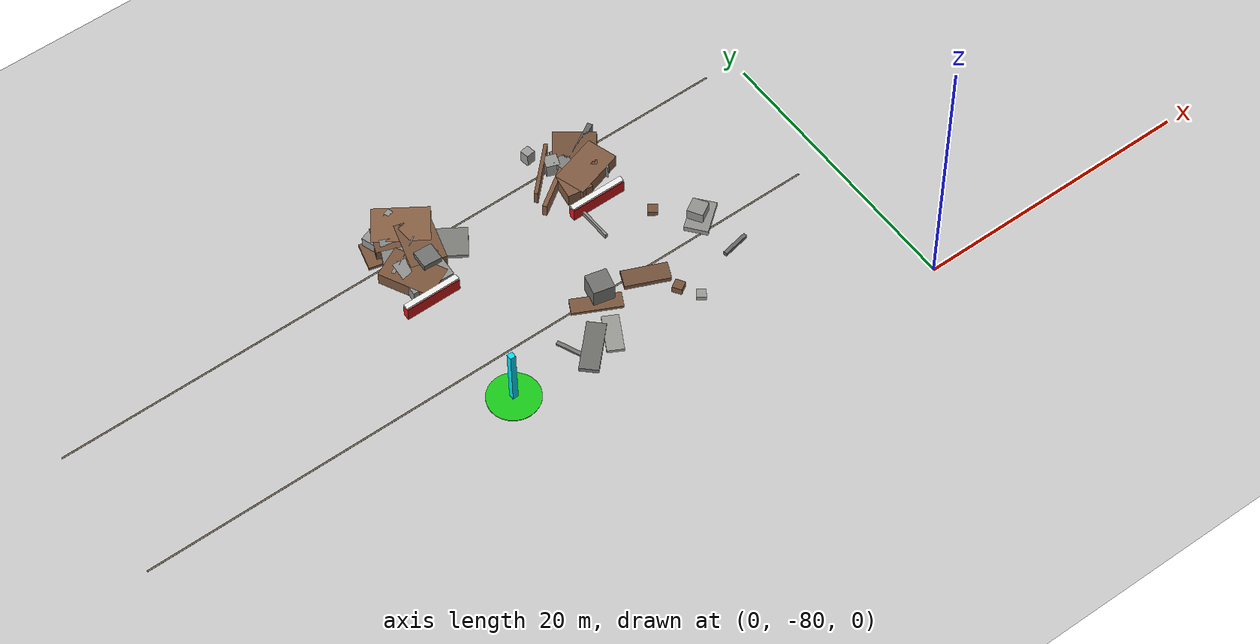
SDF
<sdf version="1.6">
 <world name="navitas_arena">
  <model name="ground_plane">
   <static>true</static>
   <link name="link">
    <collision name="collision">
     <geometry><plane><normal>0 0 1</normal><size>400 400</size></plane></geometry>
     <surface><friction><ode><mu>0.8</mu><mu2>0.8</mu2></ode></friction></surface>
    </collision>
    <visual name="visual">
     <cast_shadows>false</cast_shadows>
     <geometry><plane><normal>0 0 1</normal><size>400 400</size></plane></geometry>
     <material>
      <script><uri>file://media/materials/scripts/gazebo.material</uri><name>Gazebo/Grey</name></script>
     </material>
    </visual>
   </link>
  </model>
  <model name="gh_zor_-2">
   <static>true</static>
   <pose>-27.200 -68.800 0.010 0 0 0.000</pose>
   <link name="link">
    <collision name="col"><geometry><box><size>50.000 0.120 0.020</size></box></geometry></collision>
    <visual name="vis">
     <geometry><box><size>50.000 0.120 0.020</size></box></geometry>
     <material><ambient>0.42 0.38 0.32 1</ambient><diffuse>0.42 0.38 0.32 1</diffuse></material>
    </visual>
   </link>
  </model>
  <model name="gh_zor_-1">
   <static>true</static>
   <pose>-27.200 -58.800 0.010 0 0 0.000</pose>
   <link name="link">
    <collision name="col"><geometry><box><size>50.000 0.120 0.020</size></box></geometry></collision>
    <visual name="vis">
     <geometry><box><size>50.000 0.120 0.020</size></box></geometry>
     <material><ambient>0.42 0.38 0.32 1</ambient><diffuse>0.42 0.38 0.32 1</diffuse></material>
    </visual>
   </link>
  </model>
  <model name="bar_zor_1">
   <static>true</static>
   <pose>-27.200 -62.800 0.500 0 0 0.000</pose>
   <link name="link">
    <collision name="col"><geometry><box><size>4.000 0.500 1.000</size></box></geometry></collision>
    <visual name="vis">
     <geometry><box><size>4.000 0.500 1.000</size></box></geometry>
     <material><ambient>0.85 0.10 0.10 1</ambient><diffuse>0.85 0.10 0.10 1</diffuse></material>
    </visual>
   </link>
  </model>
  <model name="bar_zor_1b">
   <static>true</static>
   <pose>-27.200 -62.800 1.000 0 0 0.000</pose>
   <link name="link">
    <collision name="col"><geometry><box><size>4.000 0.400 0.300</size></box></geometry></collision>
    <visual name="vis">
     <geometry><box><size>4.000 0.400 0.300</size></box></geometry>
     <material><ambient>0.95 0.95 0.95 1</ambient><diffuse>0.95 0.95 0.95 1</diffuse></material>
    </visual>
   </link>
  </model>
  <model name="blk_zor_1_0_2">
   <static>true</static>
   <pose>-27.224 -60.742 0.500 0 0 2.043</pose>
   <link name="link">
    <collision name="col"><geometry><box><size>3.851 2.311 1.000</size></box></geometry></collision>
    <visual name="vis">
     <geometry><box><size>3.851 2.311 1.000</size></box></geometry>
     <material><ambient>0.49 0.34 0.24 1</ambient><diffuse>0.49 0.34 0.24 1</diffuse></material>
    </visual>
   </link>
  </model>
  <model name="blk_zor_1_0_3">
   <static>true</static>
   <pose>-26.586 -60.963 0.500 0 0 3.073</pose>
   <link name="link">
    <collision name="col"><geometry><box><size>2.978 2.706 1.000</size></box></geometry></collision>
    <visual name="vis">
     <geometry><box><size>2.978 2.706 1.000</size></box></geometry>
     <material><ambient>0.57 0.57 0.56 1</ambient><diffuse>0.57 0.57 0.56 1</diffuse></material>
    </visual>
   </link>
  </model>
  <model name="blk_zor_1_0_4">
   <static>true</static>
   <pose>-25.892 -60.495 0.717 0 0 1.515</pose>
   <link name="link">
    <collision name="col"><geometry><box><size>1.316 1.316 1.435</size></box></geometry></collision>
    <visual name="vis">
     <geometry><box><size>1.316 1.316 1.435</size></box></geometry>
     <material><ambient>0.45 0.45 0.44 1</ambient><diffuse>0.45 0.45 0.44 1</diffuse></material>
    </visual>
   </link>
  </model>
  <model name="blk_zor_1_1_2">
   <static>true</static>
   <pose>-26.978 -59.238 0.500 0 0 0.561</pose>
   <link name="link">
    <collision name="col"><geometry><box><size>3.128 0.245 1.000</size></box></geometry></collision>
    <visual name="vis">
     <geometry><box><size>3.128 0.245 1.000</size></box></geometry>
     <material><ambient>0.55 0.55 0.54 1</ambient><diffuse>0.55 0.55 0.54 1</diffuse></material>
    </visual>
   </link>
  </model>
  <model name="blk_zor_1_1_3">
   <static>true</static>
   <pose>-26.429 -59.131 0.500 0 0 2.705</pose>
   <link name="link">
    <collision name="col"><geometry><box><size>3.576 2.157 1.000</size></box></geometry></collision>
    <visual name="vis">
     <geometry><box><size>3.576 2.157 1.000</size></box></geometry>
     <material><ambient>0.53 0.53 0.52 1</ambient><diffuse>0.53 0.53 0.52 1</diffuse></material>
    </visual>
   </link>
  </model>
  <model name="blk_zor_1_1_4">
   <static>true</static>
   <pose>-25.496 -59.033 0.500 0 0 1.300</pose>
   <link name="link">
    <collision name="col"><geometry><box><size>3.503 2.466 1.000</size></box></geometry></collision>
    <visual name="vis">
     <geometry><box><size>3.503 2.466 1.000</size></box></geometry>
     <material><ambient>0.48 0.34 0.24 1</ambient><diffuse>0.48 0.34 0.24 1</diffuse></material>
    </visual>
   </link>
  </model>
  <model name="blk_zor_1_2_2">
   <static>true</static>
   <pose>-27.019 -57.527 0.500 0 0 2.783</pose>
   <link name="link">
    <collision name="col"><geometry><box><size>1.966 1.966 1.000</size></box></geometry></collision>
    <visual name="vis">
     <geometry><box><size>1.966 1.966 1.000</size></box></geometry>
     <material><ambient>0.45 0.32 0.23 1</ambient><diffuse>0.45 0.32 0.23 1</diffuse></material>
    </visual>
   </link>
  </model>
  <model name="blk_zor_1_2_3">
   <static>true</static>
   <pose>-26.630 -57.361 0.500 0 0 0.337</pose>
   <link name="link">
    <collision name="col"><geometry><box><size>2.835 2.568 1.000</size></box></geometry></collision>
    <visual name="vis">
     <geometry><box><size>2.835 2.568 1.000</size></box></geometry>
     <material><ambient>0.59 0.59 0.58 1</ambient><diffuse>0.59 0.59 0.58 1</diffuse></material>
    </visual>
   </link>
  </model>
  <model name="blk_zor_1_2_4">
   <static>true</static>
   <pose>-25.750 -57.186 0.500 0 0 2.552</pose>
   <link name="link">
    <collision name="col"><geometry><box><size>3.876 2.658 1.000</size></box></geometry></collision>
    <visual name="vis">
     <geometry><box><size>3.876 2.658 1.000</size></box></geometry>
     <material><ambient>0.54 0.38 0.27 1</ambient><diffuse>0.54 0.38 0.27 1</diffuse></material>
    </visual>
   </link>
  </model>
  <model name="bar_zor_2">
   <static>true</static>
   <pose>-14.200 -62.800 0.500 0 0 0.000</pose>
   <link name="link">
    <collision name="col"><geometry><box><size>4.000 0.500 1.000</size></box></geometry></collision>
    <visual name="vis">
     <geometry><box><size>4.000 0.500 1.000</size></box></geometry>
     <material><ambient>0.85 0.10 0.10 1</ambient><diffuse>0.85 0.10 0.10 1</diffuse></material>
    </visual>
   </link>
  </model>
  <model name="bar_zor_2b">
   <static>true</static>
   <pose>-14.200 -62.800 1.000 0 0 0.000</pose>
   <link name="link">
    <collision name="col"><geometry><box><size>4.000 0.400 0.300</size></box></geometry></collision>
    <visual name="vis">
     <geometry><box><size>4.000 0.400 0.300</size></box></geometry>
     <material><ambient>0.95 0.95 0.95 1</ambient><diffuse>0.95 0.95 0.95 1</diffuse></material>
    </visual>
   </link>
  </model>
  <model name="blk_zor_2_0_0">
   <static>true</static>
   <pose>-15.810 -60.404 0.500 0 0 0.604</pose>
   <link name="link">
    <collision name="col"><geometry><box><size>4.060 0.302 1.000</size></box></geometry></collision>
    <visual name="vis">
     <geometry><box><size>4.060 0.302 1.000</size></box></geometry>
     <material><ambient>0.52 0.36 0.26 1</ambient><diffuse>0.52 0.36 0.26 1</diffuse></material>
    </visual>
   </link>
  </model>
  <model name="blk_zor_2_0_1">
   <static>true</static>
   <pose>-14.793 -61.115 0.500 0 0 1.422</pose>
   <link name="link">
    <collision name="col"><geometry><box><size>1.780 1.780 1.000</size></box></geometry></collision>
    <visual name="vis">
     <geometry><box><size>1.780 1.780 1.000</size></box></geometry>
     <material><ambient>0.51 0.36 0.26 1</ambient><diffuse>0.51 0.36 0.26 1</diffuse></material>
    </visual>
   </link>
  </model>
  <model name="blk_zor_2_0_2">
   <static>true</static>
   <pose>-14.279 -60.592 0.500 0 0 1.171</pose>
   <link name="link">
    <collision name="col"><geometry><box><size>0.885 0.885 1.000</size></box></geometry></collision>
    <visual name="vis">
     <geometry><box><size>0.885 0.885 1.000</size></box></geometry>
     <material><ambient>0.41 0.41 0.41 1</ambient><diffuse>0.41 0.41 0.41 1</diffuse></material>
    </visual>
   </link>
  </model>
  <model name="blk_zor_2_0_3">
   <static>true</static>
   <pose>-13.443 -60.551 0.500 0 0 0.303</pose>
   <link name="link">
    <collision name="col"><geometry><box><size>3.634 2.232 1.000</size></box></geometry></collision>
    <visual name="vis">
     <geometry><box><size>3.634 2.232 1.000</size></box></geometry>
     <material><ambient>0.51 0.36 0.26 1</ambient><diffuse>0.51 0.36 0.26 1</diffuse></material>
    </visual>
   </link>
  </model>
  <model name="blk_zor_2_0_4">
   <static>true</static>
   <pose>-12.368 -61.005 0.500 0 0 2.349</pose>
   <link name="link">
    <collision name="col"><geometry><box><size>0.752 0.752 1.000</size></box></geometry></collision>
    <visual name="vis">
     <geometry><box><size>0.752 0.752 1.000</size></box></geometry>
     <material><ambient>0.48 0.48 0.47 1</ambient><diffuse>0.48 0.48 0.47 1</diffuse></material>
    </visual>
   </link>
  </model>
  <model name="blk_zor_2_1_0">
   <static>true</static>
   <pose>-15.906 -58.948 0.500 0 0 0.793</pose>
   <link name="link">
    <collision name="col"><geometry><box><size>4.090 0.256 1.000</size></box></geometry></collision>
    <visual name="vis">
     <geometry><box><size>4.090 0.256 1.000</size></box></geometry>
     <material><ambient>0.48 0.34 0.24 1</ambient><diffuse>0.48 0.34 0.24 1</diffuse></material>
    </visual>
   </link>
  </model>
  <model name="blk_zor_2_1_1">
   <static>true</static>
   <pose>-14.981 -58.819 0.500 0 0 1.225</pose>
   <link name="link">
    <collision name="col"><geometry><box><size>0.921 0.921 1.000</size></box></geometry></collision>
    <visual name="vis">
     <geometry><box><size>0.921 0.921 1.000</size></box></geometry>
     <material><ambient>0.60 0.60 0.59 1</ambient><diffuse>0.60 0.60 0.59 1</diffuse></material>
    </visual>
   </link>
  </model>
  <model name="blk_zor_2_1_2">
   <static>true</static>
   <pose>-14.387 -59.372 0.500 0 0 1.799</pose>
   <link name="link">
    <collision name="col"><geometry><box><size>0.983 0.983 1.000</size></box></geometry></collision>
    <visual name="vis">
     <geometry><box><size>0.983 0.983 1.000</size></box></geometry>
     <material><ambient>0.50 0.50 0.49 1</ambient><diffuse>0.50 0.50 0.49 1</diffuse></material>
    </visual>
   </link>
  </model>
  <model name="blk_zor_2_1_3">
   <static>true</static>
   <pose>-13.156 -58.898 0.500 0 0 2.515</pose>
   <link name="link">
    <collision name="col"><geometry><box><size>2.922 2.671 1.000</size></box></geometry></collision>
    <visual name="vis">
     <geometry><box><size>2.922 2.671 1.000</size></box></geometry>
     <material><ambient>0.45 0.32 0.23 1</ambient><diffuse>0.45 0.32 0.23 1</diffuse></material>
    </visual>
   </link>
  </model>
  <model name="blk_zor_2_1_4">
   <static>true</static>
   <pose>-12.879 -58.910 0.500 0 0 0.539</pose>
   <link name="link">
    <collision name="col"><geometry><box><size>3.996 0.354 1.000</size></box></geometry></collision>
    <visual name="vis">
     <geometry><box><size>3.996 0.354 1.000</size></box></geometry>
     <material><ambient>0.40 0.40 0.39 1</ambient><diffuse>0.40 0.40 0.39 1</diffuse></material>
    </visual>
   </link>
  </model>
  <model name="blk_zor_2_2_0">
   <static>true</static>
   <pose>-15.785 -57.282 0.500 0 0 1.739</pose>
   <link name="link">
    <collision name="col"><geometry><box><size>0.650 0.650 1.000</size></box></geometry></collision>
    <visual name="vis">
     <geometry><box><size>0.650 0.650 1.000</size></box></geometry>
     <material><ambient>0.61 0.61 0.60 1</ambient><diffuse>0.61 0.61 0.60 1</diffuse></material>
    </visual>
   </link>
  </model>
  <model name="deb_zor_4">
   <static>true</static>
   <pose>-22.286 -71.094 0.082 0 0 1.984</pose>
   <link name="link">
    <collision name="col"><geometry><box><size>2.063 0.271 0.164</size></box></geometry></collision>
    <visual name="vis">
     <geometry><box><size>2.063 0.271 0.164</size></box></geometry>
     <material><ambient>0.47 0.47 0.46 1</ambient><diffuse>0.47 0.47 0.46 1</diffuse></material>
    </visual>
   </link>
  </model>
  <model name="deb_zor_6">
   <static>true</static>
   <pose>-18.311 -68.756 0.764 0 0 1.341</pose>
   <link name="link">
    <collision name="col"><geometry><box><size>1.505 1.505 1.529</size></box></geometry></collision>
    <visual name="vis">
     <geometry><box><size>1.505 1.505 1.529</size></box></geometry>
     <material><ambient>0.44 0.44 0.43 1</ambient><diffuse>0.44 0.44 0.43 1</diffuse></material>
    </visual>
   </link>
  </model>
  <model name="deb_zor_20">
   <static>true</static>
   <pose>-27.108 -57.832 0.120 0 0 2.898</pose>
   <link name="link">
    <collision name="col"><geometry><box><size>3.539 2.002 0.239</size></box></geometry></collision>
    <visual name="vis">
     <geometry><box><size>3.539 2.002 0.239</size></box></geometry>
     <material><ambient>0.49 0.34 0.24 1</ambient><diffuse>0.49 0.34 0.24 1</diffuse></material>
    </visual>
   </link>
  </model>
  <model name="deb_zor_23">
   <static>true</static>
   <pose>-9.073 -70.897 0.144 0 0 0.197</pose>
   <link name="link">
    <collision name="col"><geometry><box><size>1.972 0.269 0.289</size></box></geometry></collision>
    <visual name="vis">
     <geometry><box><size>1.972 0.269 0.289</size></box></geometry>
     <material><ambient>0.40 0.40 0.40 1</ambient><diffuse>0.40 0.40 0.40 1</diffuse></material>
    </visual>
   </link>
  </model>
  <model name="deb_zor_34">
   <static>true</static>
   <pose>-11.684 -65.492 0.183 0 0 0.979</pose>
   <link name="link">
    <collision name="col"><geometry><box><size>0.687 0.687 0.367</size></box></geometry></collision>
    <visual name="vis">
     <geometry><box><size>0.687 0.687 0.367</size></box></geometry>
     <material><ambient>0.46 0.32 0.23 1</ambient><diffuse>0.46 0.32 0.23 1</diffuse></material>
    </visual>
   </link>
  </model>
  <model name="deb_zor_38">
   <static>true</static>
   <pose>-26.325 -57.719 0.144 0 0 0.900</pose>
   <link name="link">
    <collision name="col"><geometry><box><size>1.976 0.220 0.288</size></box></geometry></collision>
    <visual name="vis">
     <geometry><box><size>1.976 0.220 0.288</size></box></geometry>
     <material><ambient>0.50 0.50 0.49 1</ambient><diffuse>0.50 0.50 0.49 1</diffuse></material>
    </visual>
   </link>
  </model>
  <model name="deb_zor_44">
   <static>true</static>
   <pose>-23.627 -59.845 0.140 0 0 0.984</pose>
   <link name="link">
    <collision name="col"><geometry><box><size>2.199 2.143 0.279</size></box></geometry></collision>
    <visual name="vis">
     <geometry><box><size>2.199 2.143 0.279</size></box></geometry>
     <material><ambient>0.49 0.49 0.48 1</ambient><diffuse>0.49 0.49 0.48 1</diffuse></material>
    </visual>
   </link>
  </model>
  <model name="deb_zor_47">
   <static>true</static>
   <pose>-14.484 -58.440 0.111 0 0 1.260</pose>
   <link name="link">
    <collision name="col"><geometry><box><size>1.505 0.221 0.222</size></box></geometry></collision>
    <visual name="vis">
     <geometry><box><size>1.505 0.221 0.222</size></box></geometry>
     <material><ambient>0.47 0.47 0.46 1</ambient><diffuse>0.47 0.47 0.46 1</diffuse></material>
    </visual>
   </link>
  </model>
  <model name="deb_zor_50">
   <static>true</static>
   <pose>-9.631 -67.630 0.600 0 0 0.555</pose>
   <link name="link">
    <collision name="col"><geometry><box><size>1.119 1.119 1.201</size></box></geometry></collision>
    <visual name="vis">
     <geometry><box><size>1.119 1.119 1.201</size></box></geometry>
     <material><ambient>0.57 0.57 0.56 1</ambient><diffuse>0.57 0.57 0.56 1</diffuse></material>
    </visual>
   </link>
  </model>
  <model name="deb_zor_53">
   <static>true</static>
   <pose>-19.464 -71.712 0.111 0 0 1.078</pose>
   <link name="link">
    <collision name="col"><geometry><box><size>2.672 1.148 0.223</size></box></geometry></collision>
    <visual name="vis">
     <geometry><box><size>2.672 1.148 0.223</size></box></geometry>
     <material><ambient>0.60 0.60 0.59 1</ambient><diffuse>0.60 0.60 0.59 1</diffuse></material>
    </visual>
   </link>
  </model>
  <model name="deb_zor_55">
   <static>true</static>
   <pose>-9.534 -67.783 0.194 0 0 0.678</pose>
   <link name="link">
    <collision name="col"><geometry><box><size>2.418 1.640 0.389</size></box></geometry></collision>
    <visual name="vis">
     <geometry><box><size>2.418 1.640 0.389</size></box></geometry>
     <material><ambient>0.57 0.57 0.56 1</ambient><diffuse>0.57 0.57 0.56 1</diffuse></material>
    </visual>
   </link>
  </model>
  <model name="deb_zor_56">
   <static>true</static>
   <pose>-18.945 -69.228 0.110 0 0 2.677</pose>
   <link name="link">
    <collision name="col"><geometry><box><size>3.428 1.116 0.220</size></box></geometry></collision>
    <visual name="vis">
     <geometry><box><size>3.428 1.116 0.220</size></box></geometry>
     <material><ambient>0.48 0.34 0.24 1</ambient><diffuse>0.48 0.34 0.24 1</diffuse></material>
    </visual>
   </link>
  </model>
  <model name="deb_zor_60">
   <static>true</static>
   <pose>-14.024 -71.420 0.272 0 0 0.578</pose>
   <link name="link">
    <collision name="col"><geometry><box><size>0.686 0.686 0.544</size></box></geometry></collision>
    <visual name="vis">
     <geometry><box><size>0.686 0.686 0.544</size></box></geometry>
     <material><ambient>0.47 0.33 0.23 1</ambient><diffuse>0.47 0.33 0.23 1</diffuse></material>
    </visual>
   </link>
  </model>
  <model name="deb_zor_86">
   <static>true</static>
   <pose>-21.114 -71.820 0.168 0 0 0.802</pose>
   <link name="link">
    <collision name="col"><geometry><box><size>3.583 1.306 0.335</size></box></geometry></collision>
    <visual name="vis">
     <geometry><box><size>3.583 1.306 0.335</size></box></geometry>
     <material><ambient>0.43 0.43 0.42 1</ambient><diffuse>0.43 0.43 0.42 1</diffuse></material>
    </visual>
   </link>
  </model>
  <model name="deb_zor_108">
   <static>true</static>
   <pose>-15.155 -69.426 0.176 0 0 2.732</pose>
   <link name="link">
    <collision name="col"><geometry><box><size>3.114 1.260 0.352</size></box></geometry></collision>
    <visual name="vis">
     <geometry><box><size>3.114 1.260 0.352</size></box></geometry>
     <material><ambient>0.45 0.32 0.23 1</ambient><diffuse>0.45 0.32 0.23 1</diffuse></material>
    </visual>
   </link>
  </model>
  <model name="deb_zor_111">
   <static>true</static>
   <pose>-15.397 -63.948 0.176 0 0 1.608</pose>
   <link name="link">
    <collision name="col"><geometry><box><size>2.910 0.176 0.352</size></box></geometry></collision>
    <visual name="vis">
     <geometry><box><size>2.910 0.176 0.352</size></box></geometry>
     <material><ambient>0.58 0.58 0.57 1</ambient><diffuse>0.58 0.58 0.57 1</diffuse></material>
    </visual>
   </link>
  </model>
  <model name="deb_zor_113">
   <static>true</static>
   <pose>-13.178 -72.691 0.157 0 0 2.520</pose>
   <link name="link">
    <collision name="col"><geometry><box><size>0.649 0.649 0.315</size></box></geometry></collision>
    <visual name="vis">
     <geometry><box><size>0.649 0.649 0.315</size></box></geometry>
     <material><ambient>0.60 0.60 0.59 1</ambient><diffuse>0.60 0.60 0.59 1</diffuse></material>
    </visual>
   </link>
  </model>
  <model name="kb_zor">
   <static>true</static>
   <pose>-27.200 -71.800 0.030 0 0 0</pose>
   <link name="link">
    <visual name="vis">
     <geometry><cylinder><radius>1.8</radius><length>0.06</length></cylinder></geometry>
     <material><ambient>0.1 0.8 0.1 1</ambient><diffuse>0.1 0.8 0.1 1</diffuse></material>
    </visual>
   </link>
  </model>
  <model name="beacon_zor">
   <static>true</static>
   <pose>-27.200 -71.800 2.400 0 0 0.000</pose>
   <link name="link">
    <collision name="col"><geometry><box><size>0.400 0.400 4.500</size></box></geometry></collision>
    <visual name="vis">
     <geometry><box><size>0.400 0.400 4.500</size></box></geometry>
     <material><ambient>0.00 0.90 1.00 1</ambient><diffuse>0.00 0.90 1.00 1</diffuse></material>
    </visual>
   </link>
  </model>
 </world>
</sdf>
